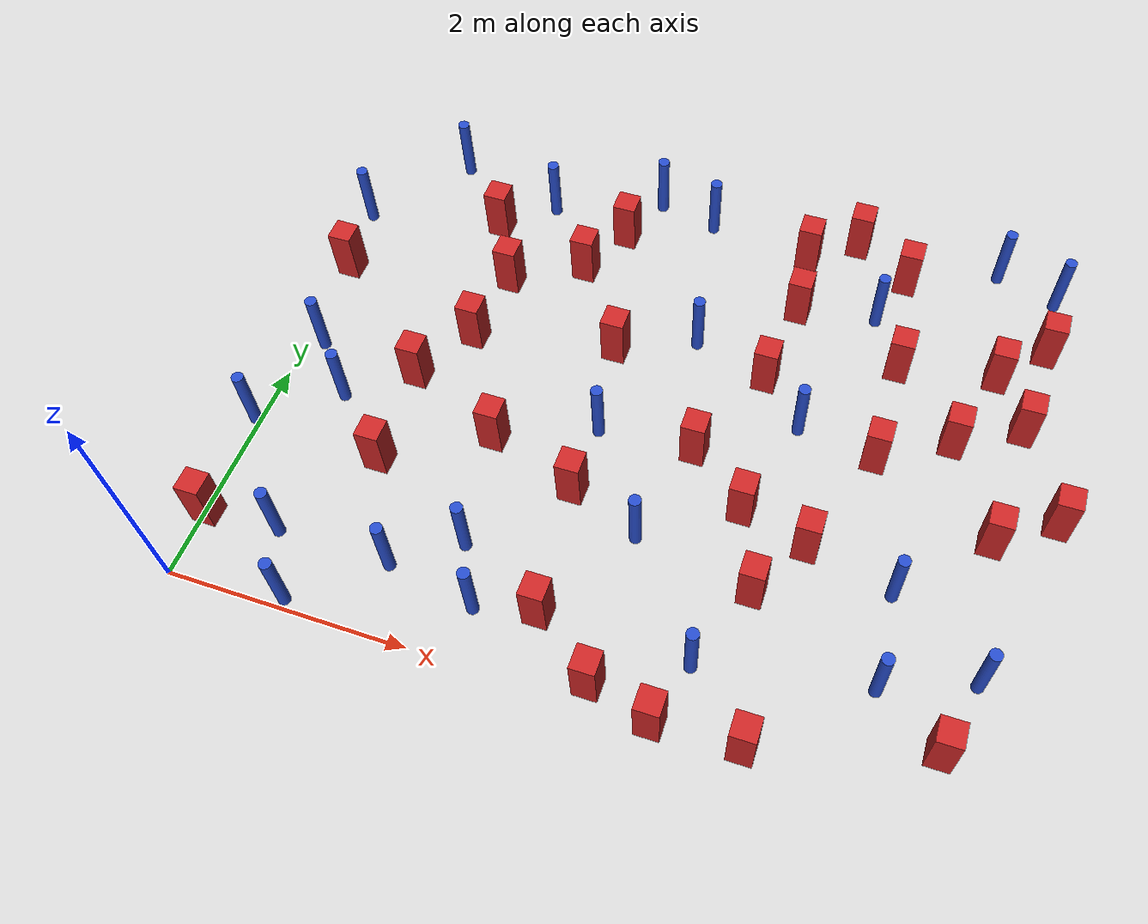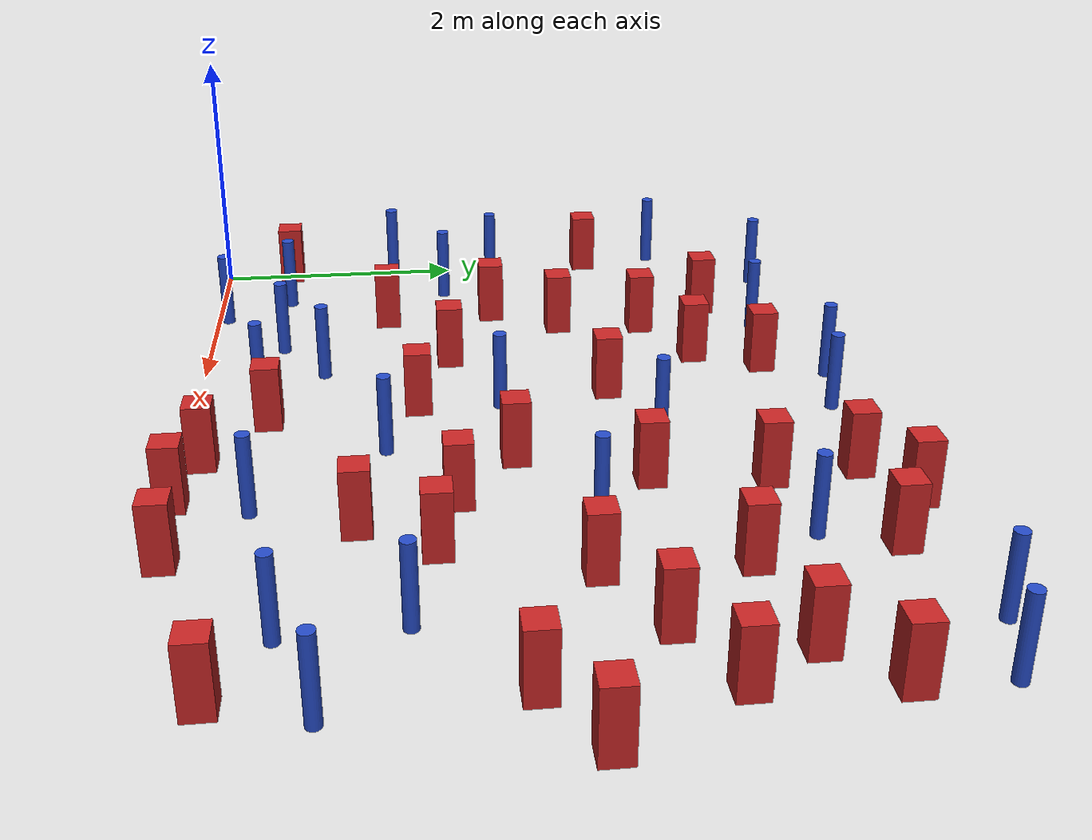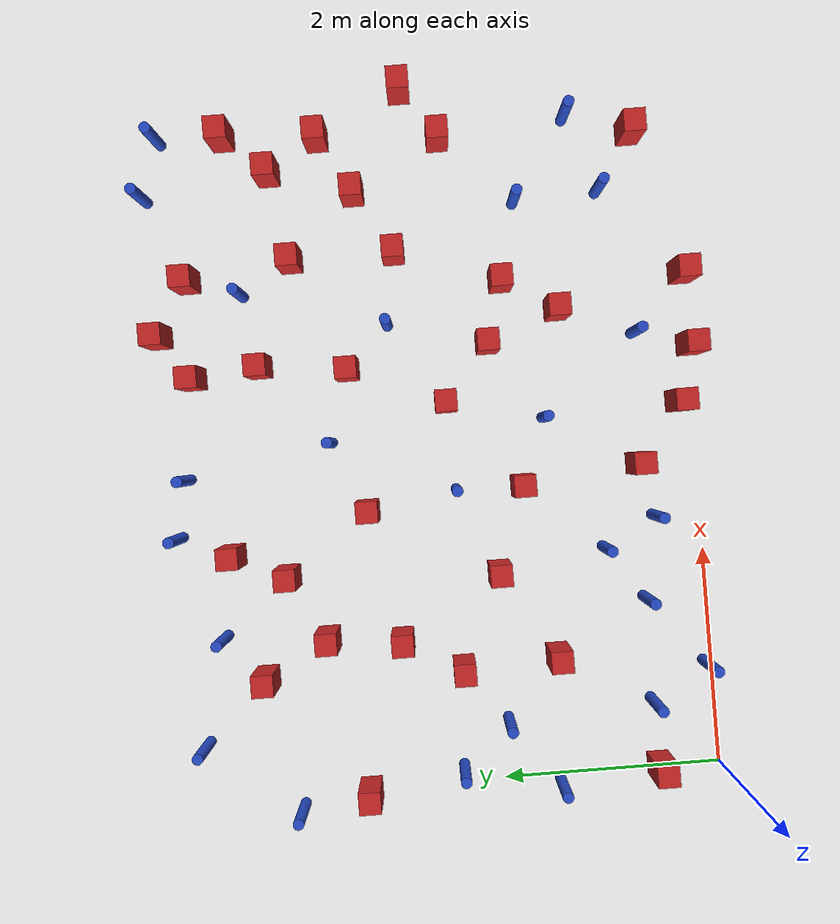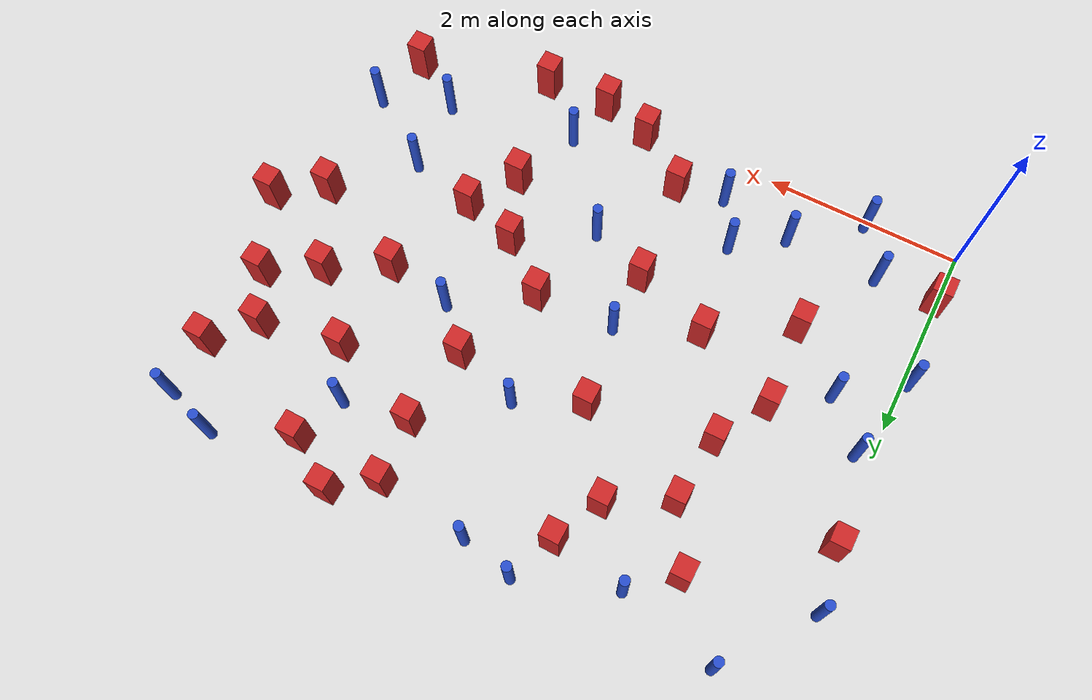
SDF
<sdf version="1.6">
 <model name="dense_5">
  <model name="square_post_obstacle0">
   <static>true</static>
   <pose>4.83513216771 4.59395278403 1.91545236811e-07 -7.35059704564e-06 1.12565212e-07 2.39332434364e-05</pose>
   <link name="link">
    <pose>0 0 0.25 0 -0 0</pose>
    <inertial>
     <mass>100</mass>
     <inertia>
      <ixx>0.166667</ixx>
      <ixy>0</ixy>
      <ixz>0</ixz>
      <iyy>0.166667</iyy>
      <iyz>0</iyz>
      <izz>0.166667</izz>
     </inertia>
    </inertial>
    <collision name="collision"><geometry><box><size>.2 .2 .5</size></box></geometry></collision>
    <visual name="visual">
     <geometry><box><size>.2 .2 .5</size></box></geometry>
     <material>
      <script><name>Gazebo/Red</name><uri>file://media/materials/scripts/gazebo.material</uri></script>
     </material>
    </visual>
   </link>
  </model>
  <model name="pole_obstacle2">
   <static>true</static>
   <pose>3.33145633506 1.40488259142 7.38925637345e-09 -8.471706928e-08 1.24976765152e-08 -1.74513093012e-07</pose>
   <link name="link">
    <pose>0 0 0.3 0 -0 0</pose>
    <inertial>
     <mass>1</mass>
     <inertia><ixx>0.145833</ixx><ixy>0</ixy><ixz>0</ixz><iyy>0.145833</iyy><iyz>0</iyz><izz>0.125</izz></inertia>
    </inertial>
    <collision name="collision">
     <geometry><cylinder><radius>0.05</radius><length>.6</length></cylinder></geometry>
    </collision>
    <visual name="visual">
     <geometry><cylinder><radius>0.05</radius><length>.6</length></cylinder></geometry>
     <material>
      <script><name>Gazebo/Blue</name><uri>file://media/materials/scripts/gazebo.material</uri></script>
     </material>
    </visual>
   </link>
  </model>
  <model name="pole_obstacle5">
   <static>true</static>
   <pose>3.24524591812 3.37877908854 7.38925637345e-09 -8.47170692798e-08 1.24976764939e-08 -1.74513093025e-07</pose>
   <link name="link">
    <pose>0 0 0.3 0 -0 0</pose>
    <inertial>
     <mass>1</mass>
     <inertia><ixx>0.145833</ixx><ixy>0</ixy><ixz>0</ixz><iyy>0.145833</iyy><iyz>0</iyz><izz>0.125</izz></inertia>
    </inertial>
    <collision name="collision">
     <geometry><cylinder><radius>0.05</radius><length>.6</length></cylinder></geometry>
    </collision>
    <visual name="visual">
     <geometry><cylinder><radius>0.05</radius><length>.6</length></cylinder></geometry>
     <material>
      <script><name>Gazebo/Blue</name><uri>file://media/materials/scripts/gazebo.material</uri></script>
     </material>
    </visual>
   </link>
  </model>
  <model name="pole_obstacle11">
   <static>true</static>
   <pose>-0.0424949494299 1.49185777286 7.38925637345e-09 -8.47170692798e-08 1.24976765005e-08 -1.7451309302e-07</pose>
   <link name="link">
    <pose>0 0 0.3 0 -0 0</pose>
    <inertial>
     <mass>1</mass>
     <inertia><ixx>0.145833</ixx><ixy>0</ixy><ixz>0</ixz><iyy>0.145833</iyy><iyz>0</iyz><izz>0.125</izz></inertia>
    </inertial>
    <collision name="collision">
     <geometry><cylinder><radius>0.05</radius><length>.6</length></cylinder></geometry>
    </collision>
    <visual name="visual">
     <geometry><cylinder><radius>0.05</radius><length>.6</length></cylinder></geometry>
     <material>
      <script><name>Gazebo/Blue</name><uri>file://media/materials/scripts/gazebo.material</uri></script>
     </material>
    </visual>
   </link>
  </model>
  <model name="square_post_obstacle22">
   <static>true</static>
   <pose>2.27502093735 4.36059536365 1.91545236811e-07 -7.35059704564e-06 1.12565212e-07 2.39332434364e-05</pose>
   <link name="link">
    <pose>0 0 0.25 0 -0 0</pose>
    <inertial>
     <mass>100</mass>
     <inertia>
      <ixx>0.166667</ixx>
      <ixy>0</ixy>
      <ixz>0</ixz>
      <iyy>0.166667</iyy>
      <iyz>0</iyz>
      <izz>0.166667</izz>
     </inertia>
    </inertial>
    <collision name="collision"><geometry><box><size>.2 .2 .5</size></box></geometry></collision>
    <visual name="visual">
     <geometry><box><size>.2 .2 .5</size></box></geometry>
     <material>
      <script><name>Gazebo/Red</name><uri>file://media/materials/scripts/gazebo.material</uri></script>
     </material>
    </visual>
   </link>
  </model>
  <model name="square_post_obstacle28">
   <static>true</static>
   <pose>2.8446491433 0.557461522699 1.91545236811e-07 -7.35059704564e-06 1.12565212e-07 2.39332434364e-05</pose>
   <link name="link">
    <pose>0 0 0.25 0 -0 0</pose>
    <inertial>
     <mass>100</mass>
     <inertia>
      <ixx>0.166667</ixx>
      <ixy>0</ixy>
      <ixz>0</ixz>
      <iyy>0.166667</iyy>
      <iyz>0</iyz>
      <izz>0.166667</izz>
     </inertia>
    </inertial>
    <collision name="collision"><geometry><box><size>.2 .2 .5</size></box></geometry></collision>
    <visual name="visual">
     <geometry><box><size>.2 .2 .5</size></box></geometry>
     <material>
      <script><name>Gazebo/Red</name><uri>file://media/materials/scripts/gazebo.material</uri></script>
     </material>
    </visual>
   </link>
  </model>
  <model name="square_post_obstacle29">
   <static>true</static>
   <pose>6.13708607684 4.17404303064 1.91545236811e-07 -7.35059704564e-06 1.12565212e-07 2.39332434364e-05</pose>
   <link name="link">
    <pose>0 0 0.25 0 -0 0</pose>
    <inertial>
     <mass>100</mass>
     <inertia>
      <ixx>0.166667</ixx>
      <ixy>0</ixy>
      <ixz>0</ixz>
      <iyy>0.166667</iyy>
      <iyz>0</iyz>
      <izz>0.166667</izz>
     </inertia>
    </inertial>
    <collision name="collision"><geometry><box><size>.2 .2 .5</size></box></geometry></collision>
    <visual name="visual">
     <geometry><box><size>.2 .2 .5</size></box></geometry>
     <material>
      <script><name>Gazebo/Red</name><uri>file://media/materials/scripts/gazebo.material</uri></script>
     </material>
    </visual>
   </link>
  </model>
  <model name="square_post_obstacle31">
   <static>true</static>
   <pose>1.38029985974 2.85222419228 1.91545236811e-07 -7.35059704564e-06 1.12565212e-07 2.39332434364e-05</pose>
   <link name="link">
    <pose>0 0 0.25 0 -0 0</pose>
    <inertial>
     <mass>100</mass>
     <inertia>
      <ixx>0.166667</ixx>
      <ixy>0</ixy>
      <ixz>0</ixz>
      <iyy>0.166667</iyy>
      <iyz>0</iyz>
      <izz>0.166667</izz>
     </inertia>
    </inertial>
    <collision name="collision"><geometry><box><size>.2 .2 .5</size></box></geometry></collision>
    <visual name="visual">
     <geometry><box><size>.2 .2 .5</size></box></geometry>
     <material>
      <script><name>Gazebo/Red</name><uri>file://media/materials/scripts/gazebo.material</uri></script>
     </material>
    </visual>
   </link>
  </model>
  <model name="pole_obstacle27">
   <static>true</static>
   <pose>5.61635046405 4.93313601313 7.38925637345e-09 -8.47170692796e-08 1.24976764786e-08 -1.74513093032e-07</pose>
   <link name="link">
    <pose>0 0 0.3 0 -0 0</pose>
    <inertial>
     <mass>1</mass>
     <inertia><ixx>0.145833</ixx><ixy>0</ixy><ixz>0</ixz><iyy>0.145833</iyy><iyz>0</iyz><izz>0.125</izz></inertia>
    </inertial>
    <collision name="collision">
     <geometry><cylinder><radius>0.05</radius><length>.6</length></cylinder></geometry>
    </collision>
    <visual name="visual">
     <geometry><cylinder><radius>0.05</radius><length>.6</length></cylinder></geometry>
     <material>
      <script><name>Gazebo/Blue</name><uri>file://media/materials/scripts/gazebo.material</uri></script>
     </material>
    </visual>
   </link>
  </model>
  <model name="pole_obstacle28">
   <static>true</static>
   <pose>-0.094796486854 3.88492192691 7.38925637345e-09 -8.471706928e-08 1.24976765098e-08 -1.74513093016e-07</pose>
   <link name="link">
    <pose>0 0 0.3 0 -0 0</pose>
    <inertial>
     <mass>1</mass>
     <inertia><ixx>0.145833</ixx><ixy>0</ixy><ixz>0</ixz><iyy>0.145833</iyy><iyz>0</iyz><izz>0.125</izz></inertia>
    </inertial>
    <collision name="collision">
     <geometry><cylinder><radius>0.05</radius><length>.6</length></cylinder></geometry>
    </collision>
    <visual name="visual">
     <geometry><cylinder><radius>0.05</radius><length>.6</length></cylinder></geometry>
     <material>
      <script><name>Gazebo/Blue</name><uri>file://media/materials/scripts/gazebo.material</uri></script>
     </material>
    </visual>
   </link>
  </model>
  <model name="pole_obstacle30">
   <static>true</static>
   <pose>5.3441508463 1.53255572151 7.38925637345e-09 -8.471706928e-08 1.24976765134e-08 -1.74513093015e-07</pose>
   <link name="link">
    <pose>0 0 0.3 0 -0 0</pose>
    <inertial>
     <mass>1</mass>
     <inertia><ixx>0.145833</ixx><ixy>0</ixy><ixz>0</ixz><iyy>0.145833</iyy><iyz>0</iyz><izz>0.125</izz></inertia>
    </inertial>
    <collision name="collision">
     <geometry><cylinder><radius>0.05</radius><length>.6</length></cylinder></geometry>
    </collision>
    <visual name="visual">
     <geometry><cylinder><radius>0.05</radius><length>.6</length></cylinder></geometry>
     <material>
      <script><name>Gazebo/Blue</name><uri>file://media/materials/scripts/gazebo.material</uri></script>
     </material>
    </visual>
   </link>
  </model>
  <model name="square_post_obstacle35">
   <static>true</static>
   <pose>4.6240850288 1.71312362912 1.91545236811e-07 -7.35059704564e-06 1.12565212e-07 2.39332434364e-05</pose>
   <link name="link">
    <pose>0 0 0.25 0 -0 0</pose>
    <inertial>
     <mass>100</mass>
     <inertia>
      <ixx>0.166667</ixx>
      <ixy>0</ixy>
      <ixz>0</ixz>
      <iyy>0.166667</iyy>
      <iyz>0</iyz>
      <izz>0.166667</izz>
     </inertia>
    </inertial>
    <collision name="collision"><geometry><box><size>.2 .2 .5</size></box></geometry></collision>
    <visual name="visual">
     <geometry><box><size>.2 .2 .5</size></box></geometry>
     <material>
      <script><name>Gazebo/Red</name><uri>file://media/materials/scripts/gazebo.material</uri></script>
     </material>
    </visual>
   </link>
  </model>
  <model name="square_post_obstacle40">
   <static>true</static>
   <pose>4.32281516901 1.21332361895 1.91545236811e-07 -7.35059704564e-06 1.12565212e-07 2.39332434364e-05</pose>
   <link name="link">
    <pose>0 0 0.25 0 -0 0</pose>
    <inertial>
     <mass>100</mass>
     <inertia>
      <ixx>0.166667</ixx>
      <ixy>0</ixy>
      <ixz>0</ixz>
      <iyy>0.166667</iyy>
      <iyz>0</iyz>
      <izz>0.166667</izz>
     </inertia>
    </inertial>
    <collision name="collision"><geometry><box><size>.2 .2 .5</size></box></geometry></collision>
    <visual name="visual">
     <geometry><box><size>.2 .2 .5</size></box></geometry>
     <material>
      <script><name>Gazebo/Red</name><uri>file://media/materials/scripts/gazebo.material</uri></script>
     </material>
    </visual>
   </link>
  </model>
  <model name="square_post_obstacle46">
   <static>true</static>
   <pose>1.1268990977 1.43719392636 1.91545236811e-07 -7.35059704564e-06 1.12565212e-07 2.39332434364e-05</pose>
   <link name="link">
    <pose>0 0 0.25 0 -0 0</pose>
    <inertial>
     <mass>100</mass>
     <inertia>
      <ixx>0.166667</ixx>
      <ixy>0</ixy>
      <ixz>0</ixz>
      <iyy>0.166667</iyy>
      <iyz>0</iyz>
      <izz>0.166667</izz>
     </inertia>
    </inertial>
    <collision name="collision"><geometry><box><size>.2 .2 .5</size></box></geometry></collision>
    <visual name="visual">
     <geometry><box><size>.2 .2 .5</size></box></geometry>
     <material>
      <script><name>Gazebo/Red</name><uri>file://media/materials/scripts/gazebo.material</uri></script>
     </material>
    </visual>
   </link>
  </model>
  <model name="square_post_obstacle47">
   <static>true</static>
   <pose>6.45544308713 2.51247155464 1.91545236811e-07 -7.35059704564e-06 1.12565212e-07 2.39332434364e-05</pose>
   <link name="link">
    <pose>0 0 0.25 0 -0 0</pose>
    <inertial>
     <mass>100</mass>
     <inertia>
      <ixx>0.166667</ixx>
      <ixy>0</ixy>
      <ixz>0</ixz>
      <iyy>0.166667</iyy>
      <iyz>0</iyz>
      <izz>0.166667</izz>
     </inertia>
    </inertial>
    <collision name="collision"><geometry><box><size>.2 .2 .5</size></box></geometry></collision>
    <visual name="visual">
     <geometry><box><size>.2 .2 .5</size></box></geometry>
     <material>
      <script><name>Gazebo/Red</name><uri>file://media/materials/scripts/gazebo.material</uri></script>
     </material>
    </visual>
   </link>
  </model>
  <model name="pole_obstacle50">
   <static>true</static>
   <pose>2.08983961861 0.932811466413 7.38925637345e-09 -8.471706928e-08 1.24976765177e-08 -1.74513093012e-07</pose>
   <link name="link">
    <pose>0 0 0.3 0 -0 0</pose>
    <inertial>
     <mass>1</mass>
     <inertia><ixx>0.145833</ixx><ixy>0</ixy><ixz>0</ixz><iyy>0.145833</iyy><iyz>0</iyz><izz>0.125</izz></inertia>
    </inertial>
    <collision name="collision">
     <geometry><cylinder><radius>0.05</radius><length>.6</length></cylinder></geometry>
    </collision>
    <visual name="visual">
     <geometry><cylinder><radius>0.05</radius><length>.6</length></cylinder></geometry>
     <material>
      <script><name>Gazebo/Blue</name><uri>file://media/materials/scripts/gazebo.material</uri></script>
     </material>
    </visual>
   </link>
  </model>
  <model name="square_post_obstacle55">
   <static>true</static>
   <pose>3.92985841278 4.60441485772 1.91545236811e-07 -7.35059704564e-06 1.12565212e-07 2.39332434364e-05</pose>
   <link name="link">
    <pose>0 0 0.25 0 -0 0</pose>
    <inertial>
     <mass>100</mass>
     <inertia>
      <ixx>0.166667</ixx>
      <ixy>0</ixy>
      <ixz>0</ixz>
      <iyy>0.166667</iyy>
      <iyz>0</iyz>
      <izz>0.166667</izz>
     </inertia>
    </inertial>
    <collision name="collision"><geometry><box><size>.2 .2 .5</size></box></geometry></collision>
    <visual name="visual">
     <geometry><box><size>.2 .2 .5</size></box></geometry>
     <material>
      <script><name>Gazebo/Red</name><uri>file://media/materials/scripts/gazebo.material</uri></script>
     </material>
    </visual>
   </link>
  </model>
  <model name="square_post_obstacle57">
   <static>true</static>
   <pose>3.542926451 2.29667868906 1.91545236811e-07 -7.35059704564e-06 1.12565212e-07 2.39332434364e-05</pose>
   <link name="link">
    <pose>0 0 0.25 0 -0 0</pose>
    <inertial>
     <mass>100</mass>
     <inertia>
      <ixx>0.166667</ixx>
      <ixy>0</ixy>
      <ixz>0</ixz>
      <iyy>0.166667</iyy>
      <iyz>0</iyz>
      <izz>0.166667</izz>
     </inertia>
    </inertial>
    <collision name="collision"><geometry><box><size>.2 .2 .5</size></box></geometry></collision>
    <visual name="visual">
     <geometry><box><size>.2 .2 .5</size></box></geometry>
     <material>
      <script><name>Gazebo/Red</name><uri>file://media/materials/scripts/gazebo.material</uri></script>
     </material>
    </visual>
   </link>
  </model>
  <model name="square_post_obstacle67">
   <static>true</static>
   <pose>6.0665706969 3.30246107337 1.91545236811e-07 -7.35059704564e-06 1.12565212e-07 2.39332434364e-05</pose>
   <link name="link">
    <pose>0 0 0.25 0 -0 0</pose>
    <inertial>
     <mass>100</mass>
     <inertia>
      <ixx>0.166667</ixx>
      <ixy>0</ixy>
      <ixz>0</ixz>
      <iyy>0.166667</iyy>
      <iyz>0</iyz>
      <izz>0.166667</izz>
     </inertia>
    </inertial>
    <collision name="collision"><geometry><box><size>.2 .2 .5</size></box></geometry></collision>
    <visual name="visual">
     <geometry><box><size>.2 .2 .5</size></box></geometry>
     <material>
      <script><name>Gazebo/Red</name><uri>file://media/materials/scripts/gazebo.material</uri></script>
     </material>
    </visual>
   </link>
  </model>
  <model name="pole_obstacle72">
   <static>true</static>
   <pose>0.644792890982 0.594872632846 7.38925637345e-09 -8.47170692799e-08 1.24976765008e-08 -1.7451309302e-07</pose>
   <link name="link">
    <pose>0 0 0.3 0 -0 0</pose>
    <inertial>
     <mass>1</mass>
     <inertia><ixx>0.145833</ixx><ixy>0</ixy><ixz>0</ixz><iyy>0.145833</iyy><iyz>0</iyz><izz>0.125</izz></inertia>
    </inertial>
    <collision name="collision">
     <geometry><cylinder><radius>0.05</radius><length>.6</length></cylinder></geometry>
    </collision>
    <visual name="visual">
     <geometry><cylinder><radius>0.05</radius><length>.6</length></cylinder></geometry>
     <material>
      <script><name>Gazebo/Blue</name><uri>file://media/materials/scripts/gazebo.material</uri></script>
     </material>
    </visual>
   </link>
  </model>
  <model name="pole_obstacle73">
   <static>true</static>
   <pose>0.155944475599 2.37688619875 7.38925637345e-09 -8.47170692792e-08 1.24976764391e-08 -1.74513093041e-07</pose>
   <link name="link">
    <pose>0 0 0.3 0 -0 0</pose>
    <inertial>
     <mass>1</mass>
     <inertia><ixx>0.145833</ixx><ixy>0</ixy><ixz>0</ixz><iyy>0.145833</iyy><iyz>0</iyz><izz>0.125</izz></inertia>
    </inertial>
    <collision name="collision">
     <geometry><cylinder><radius>0.05</radius><length>.6</length></cylinder></geometry>
    </collision>
    <visual name="visual">
     <geometry><cylinder><radius>0.05</radius><length>.6</length></cylinder></geometry>
     <material>
      <script><name>Gazebo/Blue</name><uri>file://media/materials/scripts/gazebo.material</uri></script>
     </material>
    </visual>
   </link>
  </model>
  <model name="pole_obstacle87">
   <static>true</static>
   <pose>6.08694970743 1.01501366397 7.38925637345e-09 -8.47170692801e-08 1.24976765139e-08 -1.74513093014e-07</pose>
   <link name="link">
    <pose>0 0 0.3 0 -0 0</pose>
    <inertial>
     <mass>1</mass>
     <inertia><ixx>0.145833</ixx><ixy>0</ixy><ixz>0</ixz><iyy>0.145833</iyy><iyz>0</iyz><izz>0.125</izz></inertia>
    </inertial>
    <collision name="collision">
     <geometry><cylinder><radius>0.05</radius><length>.6</length></cylinder></geometry>
    </collision>
    <visual name="visual">
     <geometry><cylinder><radius>0.05</radius><length>.6</length></cylinder></geometry>
     <material>
      <script><name>Gazebo/Blue</name><uri>file://media/materials/scripts/gazebo.material</uri></script>
     </material>
    </visual>
   </link>
  </model>
  <model name="pole_obstacle90">
   <static>true</static>
   <pose>4.29590201549 2.78081342382 7.38925637345e-09 -8.47170692798e-08 1.24976764937e-08 -1.74513093023e-07</pose>
   <link name="link">
    <pose>0 0 0.3 0 -0 0</pose>
    <inertial>
     <mass>1</mass>
     <inertia><ixx>0.145833</ixx><ixy>0</ixy><ixz>0</ixz><iyy>0.145833</iyy><iyz>0</iyz><izz>0.125</izz></inertia>
    </inertial>
    <collision name="collision">
     <geometry><cylinder><radius>0.05</radius><length>.6</length></cylinder></geometry>
    </collision>
    <visual name="visual">
     <geometry><cylinder><radius>0.05</radius><length>.6</length></cylinder></geometry>
     <material>
      <script><name>Gazebo/Blue</name><uri>file://media/materials/scripts/gazebo.material</uri></script>
     </material>
    </visual>
   </link>
  </model>
  <model name="square_post_obstacle83">
   <static>true</static>
   <pose>2.7231310962 1.64685840307 1.91545236811e-07 -7.35059704564e-06 1.12565212e-07 2.39332434364e-05</pose>
   <link name="link">
    <pose>0 0 0.25 0 -0 0</pose>
    <inertial>
     <mass>100</mass>
     <inertia>
      <ixx>0.166667</ixx>
      <ixy>0</ixy>
      <ixz>0</ixz>
      <iyy>0.166667</iyy>
      <iyz>0</iyz>
      <izz>0.166667</izz>
     </inertia>
    </inertial>
    <collision name="collision"><geometry><box><size>.2 .2 .5</size></box></geometry></collision>
    <visual name="visual">
     <geometry><box><size>.2 .2 .5</size></box></geometry>
     <material>
      <script><name>Gazebo/Red</name><uri>file://media/materials/scripts/gazebo.material</uri></script>
     </material>
    </visual>
   </link>
  </model>
  <model name="square_post_obstacle85">
   <static>true</static>
   <pose>2.04594827178 3.86359233053 1.91545236811e-07 -7.35059704564e-06 1.12565212e-07 2.39332434364e-05</pose>
   <link name="link">
    <pose>0 0 0.25 0 -0 0</pose>
    <inertial>
     <mass>100</mass>
     <inertia>
      <ixx>0.166667</ixx>
      <ixy>0</ixy>
      <ixz>0</ixz>
      <iyy>0.166667</iyy>
      <iyz>0</iyz>
      <izz>0.166667</izz>
     </inertia>
    </inertial>
    <collision name="collision"><geometry><box><size>.2 .2 .5</size></box></geometry></collision>
    <visual name="visual">
     <geometry><box><size>.2 .2 .5</size></box></geometry>
     <material>
      <script><name>Gazebo/Red</name><uri>file://media/materials/scripts/gazebo.material</uri></script>
     </material>
    </visual>
   </link>
  </model>
  <model name="square_post_obstacle86">
   <static>true</static>
   <pose>5.90977228362 0.421956221232 1.91545236811e-07 -7.35059704564e-06 1.12565212e-07 2.39332434364e-05</pose>
   <link name="link">
    <pose>0 0 0.25 0 -0 0</pose>
    <inertial>
     <mass>100</mass>
     <inertia>
      <ixx>0.166667</ixx>
      <ixy>0</ixy>
      <ixz>0</ixz>
      <iyy>0.166667</iyy>
      <iyz>0</iyz>
      <izz>0.166667</izz>
     </inertia>
    </inertial>
    <collision name="collision"><geometry><box><size>.2 .2 .5</size></box></geometry></collision>
    <visual name="visual">
     <geometry><box><size>.2 .2 .5</size></box></geometry>
     <material>
      <script><name>Gazebo/Red</name><uri>file://media/materials/scripts/gazebo.material</uri></script>
     </material>
    </visual>
   </link>
  </model>
  <model name="pole_obstacle107">
   <static>true</static>
   <pose>0.958209728458 0.0790979146741 7.38925637345e-09 -8.47170692799e-08 1.24976765026e-08 -1.74513093018e-07</pose>
   <link name="link">
    <pose>0 0 0.3 0 -0 0</pose>
    <inertial>
     <mass>1</mass>
     <inertia><ixx>0.145833</ixx><ixy>0</ixy><ixz>0</ixz><iyy>0.145833</iyy><iyz>0</iyz><izz>0.125</izz></inertia>
    </inertial>
    <collision name="collision">
     <geometry><cylinder><radius>0.05</radius><length>.6</length></cylinder></geometry>
    </collision>
    <visual name="visual">
     <geometry><cylinder><radius>0.05</radius><length>.6</length></cylinder></geometry>
     <material>
      <script><name>Gazebo/Blue</name><uri>file://media/materials/scripts/gazebo.material</uri></script>
     </material>
    </visual>
   </link>
  </model>
  <model name="pole_obstacle108">
   <static>true</static>
   <pose>1.52575746427 4.48798742755 7.38925637345e-09 -8.47170692799e-08 1.24976765033e-08 -1.74513093018e-07</pose>
   <link name="link">
    <pose>0 0 0.3 0 -0 0</pose>
    <inertial>
     <mass>1</mass>
     <inertia><ixx>0.145833</ixx><ixy>0</ixy><ixz>0</ixz><iyy>0.145833</iyy><iyz>0</iyz><izz>0.125</izz></inertia>
    </inertial>
    <collision name="collision">
     <geometry><cylinder><radius>0.05</radius><length>.6</length></cylinder></geometry>
    </collision>
    <visual name="visual">
     <geometry><cylinder><radius>0.05</radius><length>.6</length></cylinder></geometry>
     <material>
      <script><name>Gazebo/Blue</name><uri>file://media/materials/scripts/gazebo.material</uri></script>
     </material>
    </visual>
   </link>
  </model>
  <model name="square_post_obstacle104">
   <static>true</static>
   <pose>0.0385979867108 0.571247768683 1.91545236811e-07 -7.35059704564e-06 1.12565212e-07 2.39332434364e-05</pose>
   <link name="link">
    <pose>0 0 0.25 0 -0 0</pose>
    <inertial>
     <mass>100</mass>
     <inertia>
      <ixx>0.166667</ixx>
      <ixy>0</ixy>
      <ixz>0</ixz>
      <iyy>0.166667</iyy>
      <iyz>0</iyz>
      <izz>0.166667</izz>
     </inertia>
    </inertial>
    <collision name="collision"><geometry><box><size>.2 .2 .5</size></box></geometry></collision>
    <visual name="visual">
     <geometry><box><size>.2 .2 .5</size></box></geometry>
     <material>
      <script><name>Gazebo/Red</name><uri>file://media/materials/scripts/gazebo.material</uri></script>
     </material>
    </visual>
   </link>
  </model>
  <model name="square_post_obstacle108">
   <static>true</static>
   <pose>1.07884321059 2.31070785407 1.91545236811e-07 -7.35059704564e-06 1.12565212e-07 2.39332434364e-05</pose>
   <link name="link">
    <pose>0 0 0.25 0 -0 0</pose>
    <inertial>
     <mass>100</mass>
     <inertia>
      <ixx>0.166667</ixx>
      <ixy>0</ixy>
      <ixz>0</ixz>
      <iyy>0.166667</iyy>
      <iyz>0</iyz>
      <izz>0.166667</izz>
     </inertia>
    </inertial>
    <collision name="collision"><geometry><box><size>.2 .2 .5</size></box></geometry></collision>
    <visual name="visual">
     <geometry><box><size>.2 .2 .5</size></box></geometry>
     <material>
      <script><name>Gazebo/Red</name><uri>file://media/materials/scripts/gazebo.material</uri></script>
     </material>
    </visual>
   </link>
  </model>
  <model name="square_post_obstacle109">
   <static>true</static>
   <pose>4.95821048879 2.67198824912 1.91545236811e-07 -7.35059704564e-06 1.12565212e-07 2.39332434364e-05</pose>
   <link name="link">
    <pose>0 0 0.25 0 -0 0</pose>
    <inertial>
     <mass>100</mass>
     <inertia>
      <ixx>0.166667</ixx>
      <ixy>0</ixy>
      <ixz>0</ixz>
      <iyy>0.166667</iyy>
      <iyz>0</iyz>
      <izz>0.166667</izz>
     </inertia>
    </inertial>
    <collision name="collision"><geometry><box><size>.2 .2 .5</size></box></geometry></collision>
    <visual name="visual">
     <geometry><box><size>.2 .2 .5</size></box></geometry>
     <material>
      <script><name>Gazebo/Red</name><uri>file://media/materials/scripts/gazebo.material</uri></script>
     </material>
    </visual>
   </link>
  </model>
  <model name="pole_obstacle128">
   <static>true</static>
   <pose>4.66731109296 4.10421571171 7.38925637345e-09 -8.47170692796e-08 1.24976764786e-08 -1.74513093032e-07</pose>
   <link name="link">
    <pose>0 0 0.3 0 -0 0</pose>
    <inertial>
     <mass>1</mass>
     <inertia><ixx>0.145833</ixx><ixy>0</ixy><ixz>0</ixz><iyy>0.145833</iyy><iyz>0</iyz><izz>0.125</izz></inertia>
    </inertial>
    <collision name="collision">
     <geometry><cylinder><radius>0.05</radius><length>.6</length></cylinder></geometry>
    </collision>
    <visual name="visual">
     <geometry><cylinder><radius>0.05</radius><length>.6</length></cylinder></geometry>
     <material>
      <script><name>Gazebo/Blue</name><uri>file://media/materials/scripts/gazebo.material</uri></script>
     </material>
    </visual>
   </link>
  </model>
  <model name="square_post_obstacle114">
   <static>true</static>
   <pose>3.90554452949 0.00324785903413 1.91545236811e-07 -7.35059704564e-06 1.12565212e-07 2.39332434364e-05</pose>
   <link name="link">
    <pose>0 0 0.25 0 -0 0</pose>
    <inertial>
     <mass>100</mass>
     <inertia>
      <ixx>0.166667</ixx>
      <ixy>0</ixy>
      <ixz>0</ixz>
      <iyy>0.166667</iyy>
      <iyz>0</iyz>
      <izz>0.166667</izz>
     </inertia>
    </inertial>
    <collision name="collision"><geometry><box><size>.2 .2 .5</size></box></geometry></collision>
    <visual name="visual">
     <geometry><box><size>.2 .2 .5</size></box></geometry>
     <material>
      <script><name>Gazebo/Red</name><uri>file://media/materials/scripts/gazebo.material</uri></script>
     </material>
    </visual>
   </link>
  </model>
  <model name="square_post_obstacle125">
   <static>true</static>
   <pose>4.33828852136 4.89477584282 1.91545236811e-07 -7.35059704564e-06 1.12565212e-07 2.39332434364e-05</pose>
   <link name="link">
    <pose>0 0 0.25 0 -0 0</pose>
    <inertial>
     <mass>100</mass>
     <inertia>
      <ixx>0.166667</ixx>
      <ixy>0</ixy>
      <ixz>0</ixz>
      <iyy>0.166667</iyy>
      <iyz>0</iyz>
      <izz>0.166667</izz>
     </inertia>
    </inertial>
    <collision name="collision"><geometry><box><size>.2 .2 .5</size></box></geometry></collision>
    <visual name="visual">
     <geometry><box><size>.2 .2 .5</size></box></geometry>
     <material>
      <script><name>Gazebo/Red</name><uri>file://media/materials/scripts/gazebo.material</uri></script>
     </material>
    </visual>
   </link>
  </model>
  <model name="square_post_obstacle126">
   <static>true</static>
   <pose>1.44611811774 3.5366906837 1.91545236811e-07 -7.35059704564e-06 1.12565212e-07 2.39332434364e-05</pose>
   <link name="link">
    <pose>0 0 0.25 0 -0 0</pose>
    <inertial>
     <mass>100</mass>
     <inertia>
      <ixx>0.166667</ixx>
      <ixy>0</ixy>
      <ixz>0</ixz>
      <iyy>0.166667</iyy>
      <iyz>0</iyz>
      <izz>0.166667</izz>
     </inertia>
    </inertial>
    <collision name="collision"><geometry><box><size>.2 .2 .5</size></box></geometry></collision>
    <visual name="visual">
     <geometry><box><size>.2 .2 .5</size></box></geometry>
     <material>
      <script><name>Gazebo/Red</name><uri>file://media/materials/scripts/gazebo.material</uri></script>
     </material>
    </visual>
   </link>
  </model>
  <model name="square_post_obstacle131">
   <static>true</static>
   <pose>5.53539433607 3.00687245319 1.91545236811e-07 -7.35059704564e-06 1.12565212e-07 2.39332434364e-05</pose>
   <link name="link">
    <pose>0 0 0.25 0 -0 0</pose>
    <inertial>
     <mass>100</mass>
     <inertia>
      <ixx>0.166667</ixx>
      <ixy>0</ixy>
      <ixz>0</ixz>
      <iyy>0.166667</iyy>
      <iyz>0</iyz>
      <izz>0.166667</izz>
     </inertia>
    </inertial>
    <collision name="collision"><geometry><box><size>.2 .2 .5</size></box></geometry></collision>
    <visual name="visual">
     <geometry><box><size>.2 .2 .5</size></box></geometry>
     <material>
      <script><name>Gazebo/Red</name><uri>file://media/materials/scripts/gazebo.material</uri></script>
     </material>
    </visual>
   </link>
  </model>
  <model name="pole_obstacle150">
   <static>true</static>
   <pose>2.35005580184 0.451482720268 7.38925637345e-09 -8.47170692801e-08 1.24976765209e-08 -1.74513093011e-07</pose>
   <link name="link">
    <pose>0 0 0.3 0 -0 0</pose>
    <inertial>
     <mass>1</mass>
     <inertia><ixx>0.145833</ixx><ixy>0</ixy><ixz>0</ixz><iyy>0.145833</iyy><iyz>0</iyz><izz>0.125</izz></inertia>
    </inertial>
    <collision name="collision">
     <geometry><cylinder><radius>0.05</radius><length>.6</length></cylinder></geometry>
    </collision>
    <visual name="visual">
     <geometry><cylinder><radius>0.05</radius><length>.6</length></cylinder></geometry>
     <material>
      <script><name>Gazebo/Blue</name><uri>file://media/materials/scripts/gazebo.material</uri></script>
     </material>
    </visual>
   </link>
  </model>
  <model name="pole_obstacle151">
   <static>true</static>
   <pose>5.38533523814 0.754646965506 7.38925637345e-09 -8.47170692799e-08 1.24976765038e-08 -1.74513093018e-07</pose>
   <link name="link">
    <pose>0 0 0.3 0 -0 0</pose>
    <inertial>
     <mass>1</mass>
     <inertia><ixx>0.145833</ixx><ixy>0</ixy><ixz>0</ixz><iyy>0.145833</iyy><iyz>0</iyz><izz>0.125</izz></inertia>
    </inertial>
    <collision name="collision">
     <geometry><cylinder><radius>0.05</radius><length>.6</length></cylinder></geometry>
    </collision>
    <visual name="visual">
     <geometry><cylinder><radius>0.05</radius><length>.6</length></cylinder></geometry>
     <material>
      <script><name>Gazebo/Blue</name><uri>file://media/materials/scripts/gazebo.material</uri></script>
     </material>
    </visual>
   </link>
  </model>
  <model name="square_post_obstacle144">
   <static>true</static>
   <pose>4.95369548418 3.62554451247 1.91545236811e-07 -7.35059704564e-06 1.12565212e-07 2.39332434364e-05</pose>
   <link name="link">
    <pose>0 0 0.25 0 -0 0</pose>
    <inertial>
     <mass>100</mass>
     <inertia>
      <ixx>0.166667</ixx>
      <ixy>0</ixy>
      <ixz>0</ixz>
      <iyy>0.166667</iyy>
      <iyz>0</iyz>
      <izz>0.166667</izz>
     </inertia>
    </inertial>
    <collision name="collision"><geometry><box><size>.2 .2 .5</size></box></geometry></collision>
    <visual name="visual">
     <geometry><box><size>.2 .2 .5</size></box></geometry>
     <material>
      <script><name>Gazebo/Red</name><uri>file://media/materials/scripts/gazebo.material</uri></script>
     </material>
    </visual>
   </link>
  </model>
  <model name="square_post_obstacle148">
   <static>true</static>
   <pose>1.93762553083 1.9195149981 1.91545236811e-07 -7.35059704564e-06 1.12565212e-07 2.39332434364e-05</pose>
   <link name="link">
    <pose>0 0 0.25 0 -0 0</pose>
    <inertial>
     <mass>100</mass>
     <inertia>
      <ixx>0.166667</ixx>
      <ixy>0</ixy>
      <ixz>0</ixz>
      <iyy>0.166667</iyy>
      <iyz>0</iyz>
      <izz>0.166667</izz>
     </inertia>
    </inertial>
    <collision name="collision"><geometry><box><size>.2 .2 .5</size></box></geometry></collision>
    <visual name="visual">
     <geometry><box><size>.2 .2 .5</size></box></geometry>
     <material>
      <script><name>Gazebo/Red</name><uri>file://media/materials/scripts/gazebo.material</uri></script>
     </material>
    </visual>
   </link>
  </model>
  <model name="square_post_obstacle149">
   <static>true</static>
   <pose>2.5971655841 3.0829335772 1.91545236811e-07 -7.35059704564e-06 1.12565212e-07 2.39332434364e-05</pose>
   <link name="link">
    <pose>0 0 0.25 0 -0 0</pose>
    <inertial>
     <mass>100</mass>
     <inertia>
      <ixx>0.166667</ixx>
      <ixy>0</ixy>
      <ixz>0</ixz>
      <iyy>0.166667</iyy>
      <iyz>0</iyz>
      <izz>0.166667</izz>
     </inertia>
    </inertial>
    <collision name="collision"><geometry><box><size>.2 .2 .5</size></box></geometry></collision>
    <visual name="visual">
     <geometry><box><size>.2 .2 .5</size></box></geometry>
     <material>
      <script><name>Gazebo/Red</name><uri>file://media/materials/scripts/gazebo.material</uri></script>
     </material>
    </visual>
   </link>
  </model>
  <model name="square_post_obstacle158">
   <static>true</static>
   <pose>4.05989963006 1.87571669476 1.91545236811e-07 -7.35059704564e-06 1.12565212e-07 2.39332434364e-05</pose>
   <link name="link">
    <pose>0 0 0.25 0 -0 0</pose>
    <inertial>
     <mass>100</mass>
     <inertia>
      <ixx>0.166667</ixx>
      <ixy>0</ixy>
      <ixz>0</ixz>
      <iyy>0.166667</iyy>
      <iyz>0</iyz>
      <izz>0.166667</izz>
     </inertia>
    </inertial>
    <collision name="collision"><geometry><box><size>.2 .2 .5</size></box></geometry></collision>
    <visual name="visual">
     <geometry><box><size>.2 .2 .5</size></box></geometry>
     <material>
      <script><name>Gazebo/Red</name><uri>file://media/materials/scripts/gazebo.material</uri></script>
     </material>
    </visual>
   </link>
  </model>
  <model name="pole_obstacle167">
   <static>true</static>
   <pose>3.0022311975 4.72558989187 7.38925637345e-09 -8.47170692798e-08 1.24976765033e-08 -1.74513093019e-07</pose>
   <link name="link">
    <pose>0 0 0.3 0 -0 0</pose>
    <inertial>
     <mass>1</mass>
     <inertia><ixx>0.145833</ixx><ixy>0</ixy><ixz>0</ixz><iyy>0.145833</iyy><iyz>0</iyz><izz>0.125</izz></inertia>
    </inertial>
    <collision name="collision">
     <geometry><cylinder><radius>0.05</radius><length>.6</length></cylinder></geometry>
    </collision>
    <visual name="visual">
     <geometry><cylinder><radius>0.05</radius><length>.6</length></cylinder></geometry>
     <material>
      <script><name>Gazebo/Blue</name><uri>file://media/materials/scripts/gazebo.material</uri></script>
     </material>
    </visual>
   </link>
  </model>
  <model name="pole_obstacle169">
   <static>true</static>
   <pose>2.47045571796 4.84087708348 7.38925637345e-09 -8.47170692798e-08 1.24976765033e-08 -1.74513093019e-07</pose>
   <link name="link">
    <pose>0 0 0.3 0 -0 0</pose>
    <inertial>
     <mass>1</mass>
     <inertia><ixx>0.145833</ixx><ixy>0</ixy><ixz>0</ixz><iyy>0.145833</iyy><iyz>0</iyz><izz>0.125</izz></inertia>
    </inertial>
    <collision name="collision">
     <geometry><cylinder><radius>0.05</radius><length>.6</length></cylinder></geometry>
    </collision>
    <visual name="visual">
     <geometry><cylinder><radius>0.05</radius><length>.6</length></cylinder></geometry>
     <material>
      <script><name>Gazebo/Blue</name><uri>file://media/materials/scripts/gazebo.material</uri></script>
     </material>
    </visual>
   </link>
  </model>
  <model name="pole_obstacle171">
   <static>true</static>
   <pose>4.05219927883 0.514866557613 7.38925637345e-09 -8.471706928e-08 1.24976765164e-08 -1.74513093012e-07</pose>
   <link name="link">
    <pose>0 0 0.3 0 -0 0</pose>
    <inertial>
     <mass>1</mass>
     <inertia><ixx>0.145833</ixx><ixy>0</ixy><ixz>0</ixz><iyy>0.145833</iyy><iyz>0</iyz><izz>0.125</izz></inertia>
    </inertial>
    <collision name="collision">
     <geometry><cylinder><radius>0.05</radius><length>.6</length></cylinder></geometry>
    </collision>
    <visual name="visual">
     <geometry><cylinder><radius>0.05</radius><length>.6</length></cylinder></geometry>
     <material>
      <script><name>Gazebo/Blue</name><uri>file://media/materials/scripts/gazebo.material</uri></script>
     </material>
    </visual>
   </link>
  </model>
  <model name="pole_obstacle184">
   <static>true</static>
   <pose>6.14451662533 4.76596867383 7.38925637345e-09 -8.47170692796e-08 1.24976764786e-08 -1.74513093032e-07</pose>
   <link name="link">
    <pose>0 0 0.3 0 -0 0</pose>
    <inertial>
     <mass>1</mass>
     <inertia><ixx>0.145833</ixx><ixy>0</ixy><ixz>0</ixz><iyy>0.145833</iyy><iyz>0</iyz><izz>0.125</izz></inertia>
    </inertial>
    <collision name="collision">
     <geometry><cylinder><radius>0.05</radius><length>.6</length></cylinder></geometry>
    </collision>
    <visual name="visual">
     <geometry><cylinder><radius>0.05</radius><length>.6</length></cylinder></geometry>
     <material>
      <script><name>Gazebo/Blue</name><uri>file://media/materials/scripts/gazebo.material</uri></script>
     </material>
    </visual>
   </link>
  </model>
  <model name="square_post_obstacle178">
   <static>true</static>
   <pose>5.98564520383 2.19281158726 1.91545236811e-07 -7.35059704564e-06 1.12565212e-07 2.39332434364e-05</pose>
   <link name="link">
    <pose>0 0 0.25 0 -0 0</pose>
    <inertial>
     <mass>100</mass>
     <inertia>
      <ixx>0.166667</ixx>
      <ixy>0</ixy>
      <ixz>0</ixz>
      <iyy>0.166667</iyy>
      <iyz>0</iyz>
      <izz>0.166667</izz>
     </inertia>
    </inertial>
    <collision name="collision"><geometry><box><size>.2 .2 .5</size></box></geometry></collision>
    <visual name="visual">
     <geometry><box><size>.2 .2 .5</size></box></geometry>
     <material>
      <script><name>Gazebo/Red</name><uri>file://media/materials/scripts/gazebo.material</uri></script>
     </material>
    </visual>
   </link>
  </model>
  <model name="square_post_obstacle179">
   <static>true</static>
   <pose>0.00575124392225 3.25297368594 1.91545236811e-07 -7.35059704564e-06 1.12565212e-07 2.39332434364e-05</pose>
   <link name="link">
    <pose>0 0 0.25 0 -0 0</pose>
    <inertial>
     <mass>100</mass>
     <inertia>
      <ixx>0.166667</ixx>
      <ixy>0</ixy>
      <ixz>0</ixz>
      <iyy>0.166667</iyy>
      <iyz>0</iyz>
      <izz>0.166667</izz>
     </inertia>
    </inertial>
    <collision name="collision"><geometry><box><size>.2 .2 .5</size></box></geometry></collision>
    <visual name="visual">
     <geometry><box><size>.2 .2 .5</size></box></geometry>
     <material>
      <script><name>Gazebo/Red</name><uri>file://media/materials/scripts/gazebo.material</uri></script>
     </material>
    </visual>
   </link>
  </model>
  <model name="pole_obstacle199">
   <static>true</static>
   <pose>1.59786004734 0.590227375624 7.38925637345e-09 -8.47170692799e-08 1.24976765075e-08 -1.74513093017e-07</pose>
   <link name="link">
    <pose>0 0 0.3 0 -0 0</pose>
    <inertial>
     <mass>1</mass>
     <inertia><ixx>0.145833</ixx><ixy>0</ixy><ixz>0</ixz><iyy>0.145833</iyy><iyz>0</iyz><izz>0.125</izz></inertia>
    </inertial>
    <collision name="collision">
     <geometry><cylinder><radius>0.05</radius><length>.6</length></cylinder></geometry>
    </collision>
    <visual name="visual">
     <geometry><cylinder><radius>0.05</radius><length>.6</length></cylinder></geometry>
     <material>
      <script><name>Gazebo/Blue</name><uri>file://media/materials/scripts/gazebo.material</uri></script>
     </material>
    </visual>
   </link>
  </model>
  <model name="square_post_obstacle198">
   <static>true</static>
   <pose>3.38894658551 0.144630837443 1.91545236811e-07 -7.35059704564e-06 1.12565212e-07 2.39332434364e-05</pose>
   <link name="link">
    <pose>0 0 0.25 0 -0 0</pose>
    <inertial>
     <mass>100</mass>
     <inertia>
      <ixx>0.166667</ixx>
      <ixy>0</ixy>
      <ixz>0</ixz>
      <iyy>0.166667</iyy>
      <iyz>0</iyz>
      <izz>0.166667</izz>
     </inertia>
    </inertial>
    <collision name="collision"><geometry><box><size>.2 .2 .5</size></box></geometry></collision>
    <visual name="visual">
     <geometry><box><size>.2 .2 .5</size></box></geometry>
     <material>
      <script><name>Gazebo/Red</name><uri>file://media/materials/scripts/gazebo.material</uri></script>
     </material>
    </visual>
   </link>
  </model>
  <model name="pole_obstacle207">
   <static>true</static>
   <pose>0.546904626796 4.72889594164 7.38925637345e-09 -8.47170692799e-08 1.24976765073e-08 -1.74513093015e-07</pose>
   <link name="link">
    <pose>0 0 0.3 0 -0 0</pose>
    <inertial>
     <mass>1</mass>
     <inertia><ixx>0.145833</ixx><ixy>0</ixy><ixz>0</ixz><iyy>0.145833</iyy><iyz>0</iyz><izz>0.125</izz></inertia>
    </inertial>
    <collision name="collision">
     <geometry><cylinder><radius>0.05</radius><length>.6</length></cylinder></geometry>
    </collision>
    <visual name="visual">
     <geometry><cylinder><radius>0.05</radius><length>.6</length></cylinder></geometry>
     <material>
      <script><name>Gazebo/Blue</name><uri>file://media/materials/scripts/gazebo.material</uri></script>
     </material>
    </visual>
   </link>
  </model>
  <model name="pole_obstacle214">
   <static>true</static>
   <pose>0.564944059143 1.93291226802 7.38925637345e-09 -8.47170692799e-08 1.24976765033e-08 -1.7451309302e-07</pose>
   <link name="link">
    <pose>0 0 0.3 0 -0 0</pose>
    <inertial>
     <mass>1</mass>
     <inertia><ixx>0.145833</ixx><ixy>0</ixy><ixz>0</ixz><iyy>0.145833</iyy><iyz>0</iyz><izz>0.125</izz></inertia>
    </inertial>
    <collision name="collision">
     <geometry><cylinder><radius>0.05</radius><length>.6</length></cylinder></geometry>
    </collision>
    <visual name="visual">
     <geometry><cylinder><radius>0.05</radius><length>.6</length></cylinder></geometry>
     <material>
      <script><name>Gazebo/Blue</name><uri>file://media/materials/scripts/gazebo.material</uri></script>
     </material>
    </visual>
   </link>
  </model>
  <model name="pole_obstacle225">
   <static>true</static>
   <pose>2.72821072776 2.25724897942 7.38925637345e-09 -8.47170692798e-08 1.24976764939e-08 -1.74513093025e-07</pose>
   <link name="link">
    <pose>0 0 0.3 0 -0 0</pose>
    <inertial>
     <mass>1</mass>
     <inertia><ixx>0.145833</ixx><ixy>0</ixy><ixz>0</ixz><iyy>0.145833</iyy><iyz>0</iyz><izz>0.125</izz></inertia>
    </inertial>
    <collision name="collision">
     <geometry><cylinder><radius>0.05</radius><length>.6</length></cylinder></geometry>
    </collision>
    <visual name="visual">
     <geometry><cylinder><radius>0.05</radius><length>.6</length></cylinder></geometry>
     <material>
      <script><name>Gazebo/Blue</name><uri>file://media/materials/scripts/gazebo.material</uri></script>
     </material>
    </visual>
   </link>
  </model>
  <model name="square_post_obstacle202">
   <static>true</static>
   <pose>3.99283770379 3.98304295684 1.91545236811e-07 -7.35059704564e-06 1.12565212e-07 2.39332434364e-05</pose>
   <link name="link">
    <pose>0 0 0.25 0 -0 0</pose>
    <inertial>
     <mass>100</mass>
     <inertia>
      <ixx>0.166667</ixx>
      <ixy>0</ixy>
      <ixz>0</ixz>
      <iyy>0.166667</iyy>
      <iyz>0</iyz>
      <izz>0.166667</izz>
     </inertia>
    </inertial>
    <collision name="collision"><geometry><box><size>.2 .2 .5</size></box></geometry></collision>
    <visual name="visual">
     <geometry><box><size>.2 .2 .5</size></box></geometry>
     <material>
      <script><name>Gazebo/Red</name><uri>file://media/materials/scripts/gazebo.material</uri></script>
     </material>
    </visual>
   </link>
  </model>
  <model name="square_post_obstacle206">
   <static>true</static>
   <pose>5.77633779933 3.7761383317 1.91545236811e-07 -7.35059704564e-06 1.12565212e-07 2.39332434364e-05</pose>
   <link name="link">
    <pose>0 0 0.25 0 -0 0</pose>
    <inertial>
     <mass>100</mass>
     <inertia>
      <ixx>0.166667</ixx>
      <ixy>0</ixy>
      <ixz>0</ixz>
      <iyy>0.166667</iyy>
      <iyz>0</iyz>
      <izz>0.166667</izz>
     </inertia>
    </inertial>
    <collision name="collision"><geometry><box><size>.2 .2 .5</size></box></geometry></collision>
    <visual name="visual">
     <geometry><box><size>.2 .2 .5</size></box></geometry>
     <material>
      <script><name>Gazebo/Red</name><uri>file://media/materials/scripts/gazebo.material</uri></script>
     </material>
    </visual>
   </link>
  </model>
  <model name="square_post_obstacle214">
   <static>true</static>
   <pose>3.90677323318 3.17406138523 1.91545236811e-07 -7.35059704564e-06 1.12565212e-07 2.39332434364e-05</pose>
   <link name="link">
    <pose>0 0 0.25 0 -0 0</pose>
    <inertial>
     <mass>100</mass>
     <inertia>
      <ixx>0.166667</ixx>
      <ixy>0</ixy>
      <ixz>0</ixz>
      <iyy>0.166667</iyy>
      <iyz>0</iyz>
      <izz>0.166667</izz>
     </inertia>
    </inertial>
    <collision name="collision"><geometry><box><size>.2 .2 .5</size></box></geometry></collision>
    <visual name="visual">
     <geometry><box><size>.2 .2 .5</size></box></geometry>
     <material>
      <script><name>Gazebo/Red</name><uri>file://media/materials/scripts/gazebo.material</uri></script>
     </material>
    </visual>
   </link>
  </model>
  <model name="square_post_obstacle217">
   <static>true</static>
   <pose>4.5792899648 0.0296019880809 1.91545236811e-07 -7.35059704564e-06 1.12565212e-07 2.39332434364e-05</pose>
   <link name="link">
    <pose>0 0 0.25 0 -0 0</pose>
    <inertial>
     <mass>100</mass>
     <inertia>
      <ixx>0.166667</ixx>
      <ixy>0</ixy>
      <ixz>0</ixz>
      <iyy>0.166667</iyy>
      <iyz>0</iyz>
      <izz>0.166667</izz>
     </inertia>
    </inertial>
    <collision name="collision"><geometry><box><size>.2 .2 .5</size></box></geometry></collision>
    <visual name="visual">
     <geometry><box><size>.2 .2 .5</size></box></geometry>
     <material>
      <script><name>Gazebo/Red</name><uri>file://media/materials/scripts/gazebo.material</uri></script>
     </material>
    </visual>
   </link>
  </model>
  <model name="square_post_obstacle219">
   <static>true</static>
   <pose>1.1200099648 4.13160998808 1.91545236811e-07 -7.35059704564e-06 1.12565212e-07 2.39332434364e-05</pose>
   <link name="link">
    <pose>0 0 0.25 0 -0 0</pose>
    <inertial>
     <mass>100</mass>
     <inertia>
      <ixx>0.166667</ixx>
      <ixy>0</ixy>
      <ixz>0</ixz>
      <iyy>0.166667</iyy>
      <iyz>0</iyz>
      <izz>0.166667</izz>
     </inertia>
    </inertial>
    <collision name="collision"><geometry><box><size>.2 .2 .5</size></box></geometry></collision>
    <visual name="visual">
     <geometry><box><size>.2 .2 .5</size></box></geometry>
     <material>
      <script><name>Gazebo/Red</name><uri>file://media/materials/scripts/gazebo.material</uri></script>
     </material>
    </visual>
   </link>
  </model>
 </model>
</sdf>
